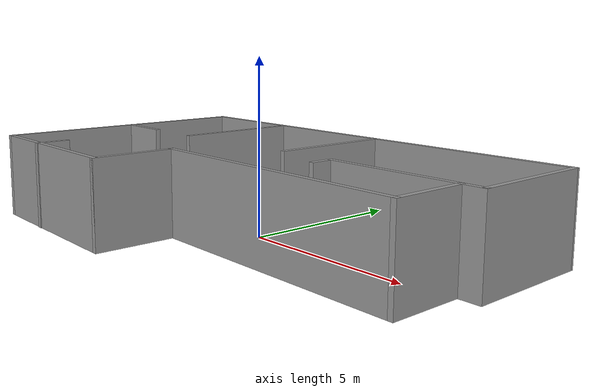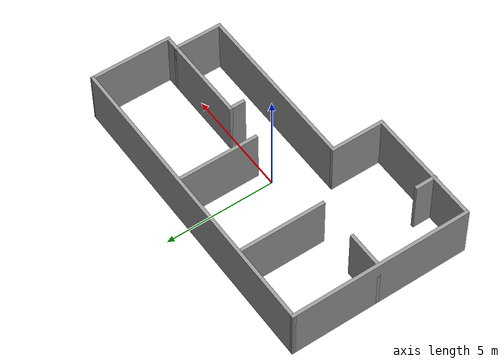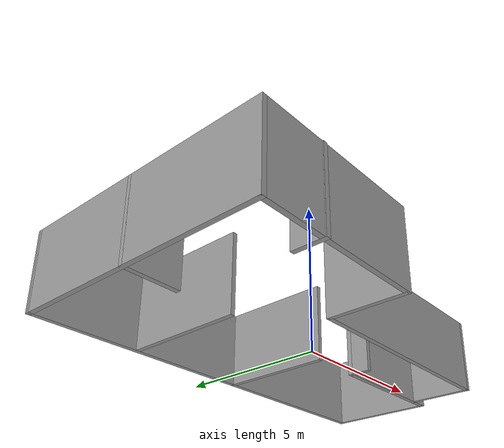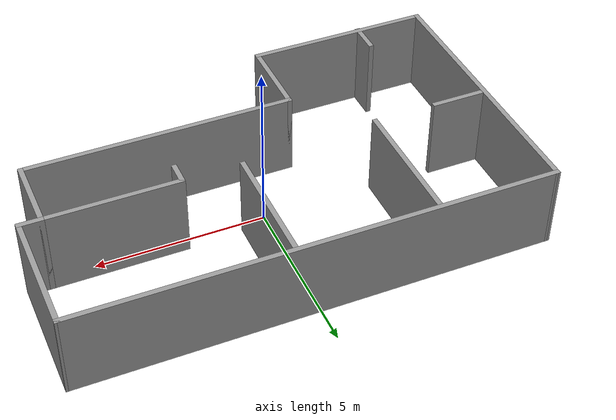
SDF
<?xml version='1.0'?>
<sdf version='1.6'>
  <model name='floorplan5973test'>
    <pose frame=''>-0.010439 -0.128409 0 0 -0 0</pose>
    <link name='Wall_100'>
      <collision name='Wall_100_Collision'>
        <geometry>
          <box>
            <size>2.5 0.15 2.5</size>
          </box>
        </geometry>
        <pose frame=''>0 0 1.25 0 -0 0</pose>
      </collision>
      <visual name='Wall_100_Visual'>
        <pose frame=''>0 0 1.25 0 -0 0</pose>
        <geometry>
          <box>
            <size>2.5 0.15 2.5</size>
          </box>
        </geometry>
        <material>
          <script>
            <uri>file://media/materials/scripts/gazebo.material</uri>
            <name>Gazebo/Grey</name>
          </script>
          <ambient>1 1 1 1</ambient>
        </material>
        <meta>
          <layer>0</layer>
        </meta>
      </visual>
      <pose frame=''>-1.55 -2.86219 0 0 -0 1.5708</pose>
    </link>
    <link name='Wall_101'>
      <collision name='Wall_101_Collision'>
        <geometry>
          <box>
            <size>8 0.15 2.5</size>
          </box>
        </geometry>
        <pose frame=''>0 0 1.25 0 -0 0</pose>
      </collision>
      <visual name='Wall_101_Visual'>
        <pose frame=''>0 0 1.25 0 -0 0</pose>
        <geometry>
          <box>
            <size>8 0.15 2.5</size>
          </box>
        </geometry>
        <material>
          <script>
            <uri>file://media/materials/scripts/gazebo.material</uri>
            <name>Gazebo/Grey</name>
          </script>
          <ambient>1 1 1 1</ambient>
        </material>
        <meta>
          <layer>0</layer>
        </meta>
      </visual>
      <pose frame=''>2.375 -1.68719 0 0 -0 0</pose>
    </link>
    <link name='Wall_102'>
      <collision name='Wall_102_Collision'>
        <geometry>
          <box>
            <size>2.25 0.15 2.5</size>
          </box>
        </geometry>
        <pose frame=''>0 0 1.25 0 -0 0</pose>
      </collision>
      <visual name='Wall_102_Visual'>
        <pose frame=''>0 0 1.25 0 -0 0</pose>
        <geometry>
          <box>
            <size>2.25 0.15 2.5</size>
          </box>
        </geometry>
        <material>
          <script>
            <uri>file://media/materials/scripts/gazebo.material</uri>
            <name>Gazebo/Grey</name>
          </script>
          <ambient>1 1 1 1</ambient>
        </material>
        <meta>
          <layer>0</layer>
        </meta>
      </visual>
      <pose frame=''>6.3 -0.637194 0 0 -0 1.5708</pose>
    </link>
    <link name='Wall_103'>
      <collision name='Wall_103_Collision'>
        <geometry>
          <box>
            <size>0.75 0.15 2.5</size>
          </box>
        </geometry>
        <pose frame=''>0 0 1.25 0 -0 0</pose>
      </collision>
      <visual name='Wall_103_Visual'>
        <pose frame=''>0 0 1.25 0 -0 0</pose>
        <geometry>
          <box>
            <size>0.75 0.15 2.5</size>
          </box>
        </geometry>
        <material>
          <script>
            <uri>file://media/materials/scripts/gazebo.material</uri>
            <name>Gazebo/Grey</name>
          </script>
          <ambient>1 1 1 1</ambient>
        </material>
        <meta>
          <layer>0</layer>
        </meta>
      </visual>
      <pose frame=''>6.6 0.412806 0 0 -0 0</pose>
    </link>
    <link name='Wall_104'>
      <collision name='Wall_104_Collision'>
        <geometry>
          <box>
            <size>3.75 0.15 2.5</size>
          </box>
        </geometry>
        <pose frame=''>0 0 1.25 0 -0 0</pose>
      </collision>
      <visual name='Wall_104_Visual'>
        <pose frame=''>0 0 1.25 0 -0 0</pose>
        <geometry>
          <box>
            <size>3.75 0.15 2.5</size>
          </box>
        </geometry>
        <material>
          <script>
            <uri>file://media/materials/scripts/gazebo.material</uri>
            <name>Gazebo/Grey</name>
          </script>
          <ambient>1 1 1 1</ambient>
        </material>
        <meta>
          <layer>0</layer>
        </meta>
      </visual>
      <pose frame=''>6.9 2.21281 0 0 -0 1.5708</pose>
    </link>
    <link name='Wall_105'>
      <collision name='Wall_105_Collision'>
        <geometry>
          <box>
            <size>13.9501 0.15 2.5</size>
          </box>
        </geometry>
        <pose frame=''>0 0 1.25 0 -0 0</pose>
      </collision>
      <visual name='Wall_105_Visual'>
        <pose frame=''>0 0 1.25 0 -0 0</pose>
        <geometry>
          <box>
            <size>13.9501 0.15 2.5</size>
          </box>
        </geometry>
        <material>
          <script>
            <uri>file://media/materials/scripts/gazebo.material</uri>
            <name>Gazebo/Grey</name>
          </script>
          <ambient>1 1 1 1</ambient>
        </material>
        <meta>
          <layer>0</layer>
        </meta>
      </visual>
      <pose frame=''>-0 4.03781 0 0 -0 3.13797</pose>
    </link>
    <link name='Wall_107'>
      <collision name='Wall_107_Collision'>
        <geometry>
          <box>
            <size>1.75 0.15 2.5</size>
          </box>
        </geometry>
        <pose frame=''>0 0 1.25 0 -0 0</pose>
      </collision>
      <visual name='Wall_107_Visual'>
        <pose frame=''>0 0 1.25 0 -0 0</pose>
        <geometry>
          <box>
            <size>1.75 0.15 2.5</size>
          </box>
        </geometry>
        <material>
          <script>
            <uri>file://media/materials/scripts/gazebo.material</uri>
            <name>Gazebo/Grey</name>
          </script>
          <ambient>1 1 1 1</ambient>
        </material>
        <meta>
          <layer>0</layer>
        </meta>
      </visual>
      <pose frame=''>-6.1 0.160773 0 0 -0 0</pose>
    </link>
    <link name='Wall_109'>
      <collision name='Wall_109_Collision'>
        <geometry>
          <box>
            <size>4 0.15 2.5</size>
          </box>
        </geometry>
        <pose frame=''>0 0 1.25 0 -0 0</pose>
      </collision>
      <visual name='Wall_109_Visual'>
        <pose frame=''>0 0 1.25 0 -0 0</pose>
        <geometry>
          <box>
            <size>4 0.15 2.5</size>
          </box>
        </geometry>
        <material>
          <script>
            <uri>file://media/materials/scripts/gazebo.material</uri>
            <name>Gazebo/Grey</name>
          </script>
          <ambient>1 1 1 1</ambient>
        </material>
        <meta>
          <layer>0</layer>
        </meta>
      </visual>
      <pose frame=''>-3.40024 2.09758 0 0 -0 -1.5708</pose>
    </link>
    <link name='Wall_111'>
      <collision name='Wall_111_Collision'>
        <geometry>
          <box>
            <size>3.75 0.15 2.5</size>
          </box>
        </geometry>
        <pose frame=''>0 0 1.25 0 -0 0</pose>
      </collision>
      <visual name='Wall_111_Visual'>
        <pose frame=''>0 0 1.25 0 -0 0</pose>
        <geometry>
          <box>
            <size>3.75 0.15 2.5</size>
          </box>
        </geometry>
        <material>
          <script>
            <uri>file://media/materials/scripts/gazebo.material</uri>
            <name>Gazebo/Grey</name>
          </script>
          <ambient>1 1 1 1</ambient>
        </material>
        <meta>
          <layer>0</layer>
        </meta>
      </visual>
      <pose frame=''>0.70293 2.22258 0 0 -0 -1.5708</pose>
    </link>
    <link name='Wall_113'>
      <collision name='Wall_113_Collision'>
        <geometry>
          <box>
            <size>4 0.15 2.5</size>
          </box>
        </geometry>
        <pose frame=''>0 0 1.25 0 -0 0</pose>
      </collision>
      <visual name='Wall_113_Visual'>
        <pose frame=''>0 0 1.25 0 -0 0</pose>
        <geometry>
          <box>
            <size>4 0.15 2.5</size>
          </box>
        </geometry>
        <material>
          <script>
            <uri>file://media/materials/scripts/gazebo.material</uri>
            <name>Gazebo/Grey</name>
          </script>
          <ambient>1 1 1 1</ambient>
        </material>
        <meta>
          <layer>0</layer>
        </meta>
      </visual>
      <pose frame=''>4.375 0.412806 0 0 -0 3.14159</pose>
    </link>
    <link name='Wall_114'>
      <collision name='Wall_114_Collision'>
        <geometry>
          <box>
            <size>0.75 0.15 2.5</size>
          </box>
        </geometry>
        <pose frame=''>0 0 1.25 0 -0 0</pose>
      </collision>
      <visual name='Wall_114_Visual'>
        <pose frame=''>0 0 1.25 0 -0 0</pose>
        <geometry>
          <box>
            <size>0.75 0.15 2.5</size>
          </box>
        </geometry>
        <material>
          <script>
            <uri>file://media/materials/scripts/gazebo.material</uri>
            <name>Gazebo/Grey</name>
          </script>
          <ambient>1 1 1 1</ambient>
        </material>
        <meta>
          <layer>0</layer>
        </meta>
      </visual>
      <pose frame=''>2.45 0.112806 0 0 -0 -1.5708</pose>
    </link>
    <link name='Wall_116'>
      <collision name='Wall_116_Collision'>
        <geometry>
          <box>
            <size>1 0.15 2.5</size>
          </box>
        </geometry>
        <pose frame=''>0 0 1.25 0 -0 0</pose>
      </collision>
      <visual name='Wall_116_Visual'>
        <pose frame=''>0 0 1.25 0 -0 0</pose>
        <geometry>
          <box>
            <size>1 0.15 2.5</size>
          </box>
        </geometry>
        <material>
          <script>
            <uri>file://media/materials/scripts/gazebo.material</uri>
            <name>Gazebo/Grey</name>
          </script>
          <ambient>1 1 1 1</ambient>
        </material>
        <meta>
          <layer>0</layer>
        </meta>
      </visual>
      <pose frame=''>-4.88864 -3.63808 0 0 -0 1.5708</pose>
    </link>
    <link name='Wall_98'>
      <collision name='Wall_98_Collision'>
        <geometry>
          <box>
            <size>8.25 0.15 2.5</size>
          </box>
        </geometry>
        <pose frame=''>0 0 1.25 0 -0 0</pose>
      </collision>
      <visual name='Wall_98_Visual'>
        <pose frame=''>0 0 1.25 0 -0 0</pose>
        <geometry>
          <box>
            <size>8.25 0.15 2.5</size>
          </box>
        </geometry>
        <material>
          <script>
            <uri>file://media/materials/scripts/gazebo.material</uri>
            <name>Gazebo/Grey</name>
          </script>
          <ambient>1 1 1 1</ambient>
        </material>
        <meta>
          <layer>0</layer>
        </meta>
      </visual>
      <pose frame=''>-6.9 0.012806 0 0 -0 -1.5708</pose>
    </link>
    <link name='Wall_99'>
      <collision name='Wall_99_Collision'>
        <geometry>
          <box>
            <size>5.5 0.15 2.5</size>
          </box>
        </geometry>
        <pose frame=''>0 0 1.25 0 -0 0</pose>
      </collision>
      <visual name='Wall_99_Visual'>
        <pose frame=''>0 0 1.25 0 -0 0</pose>
        <geometry>
          <box>
            <size>5.5 0.15 2.5</size>
          </box>
        </geometry>
        <material>
          <script>
            <uri>file://media/materials/scripts/gazebo.material</uri>
            <name>Gazebo/Grey</name>
          </script>
          <ambient>1 1 1 1</ambient>
        </material>
        <meta>
          <layer>0</layer>
        </meta>
      </visual>
      <pose frame=''>-4.225 -4.03719 0 0 -0 0</pose>
    </link>
    <static>1</static>
  </model>
</sdf>
